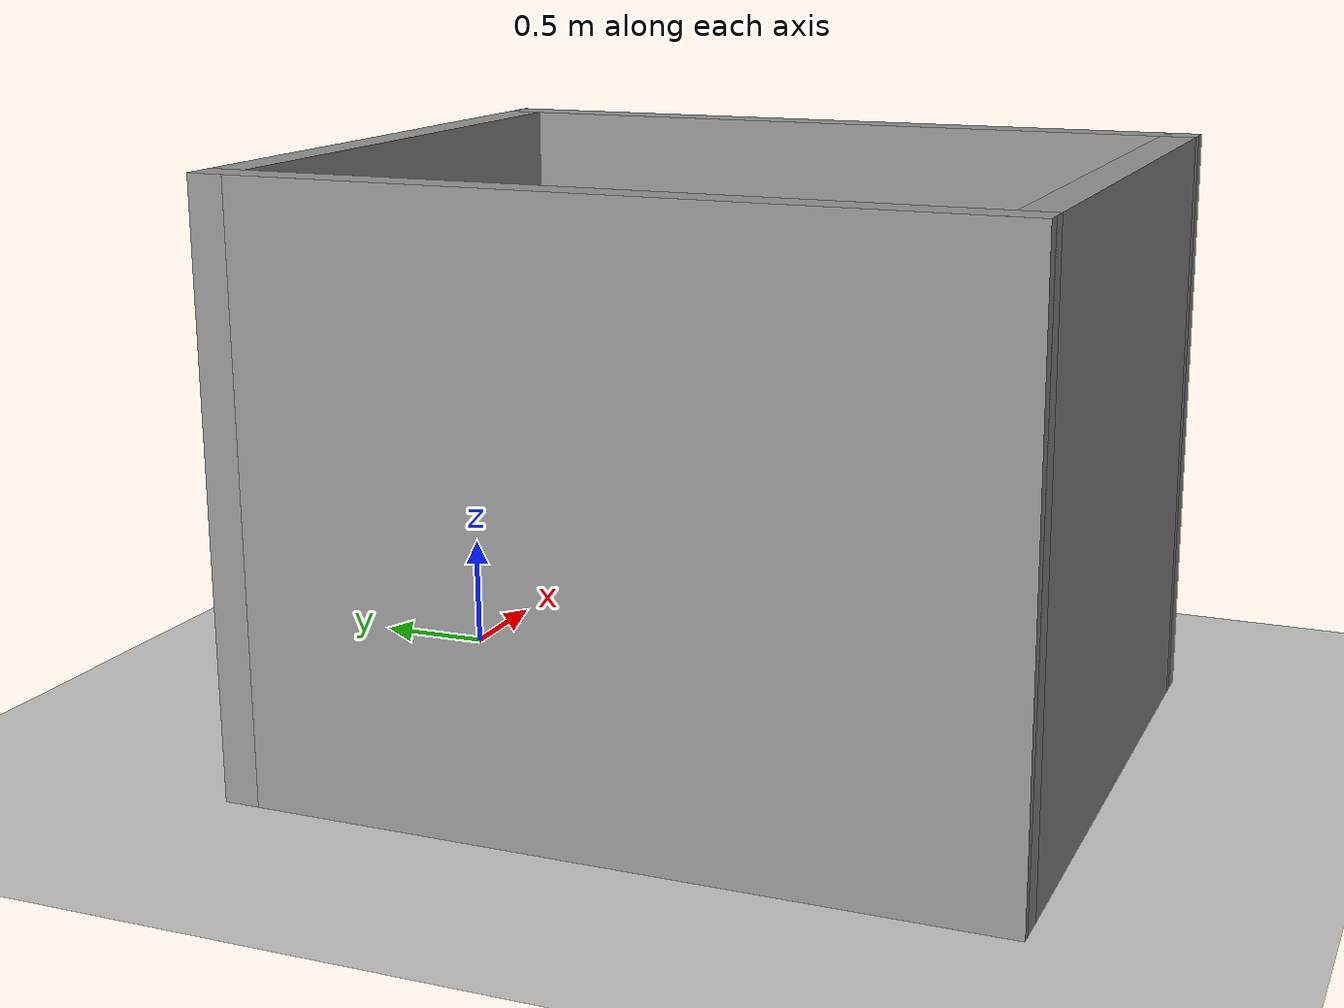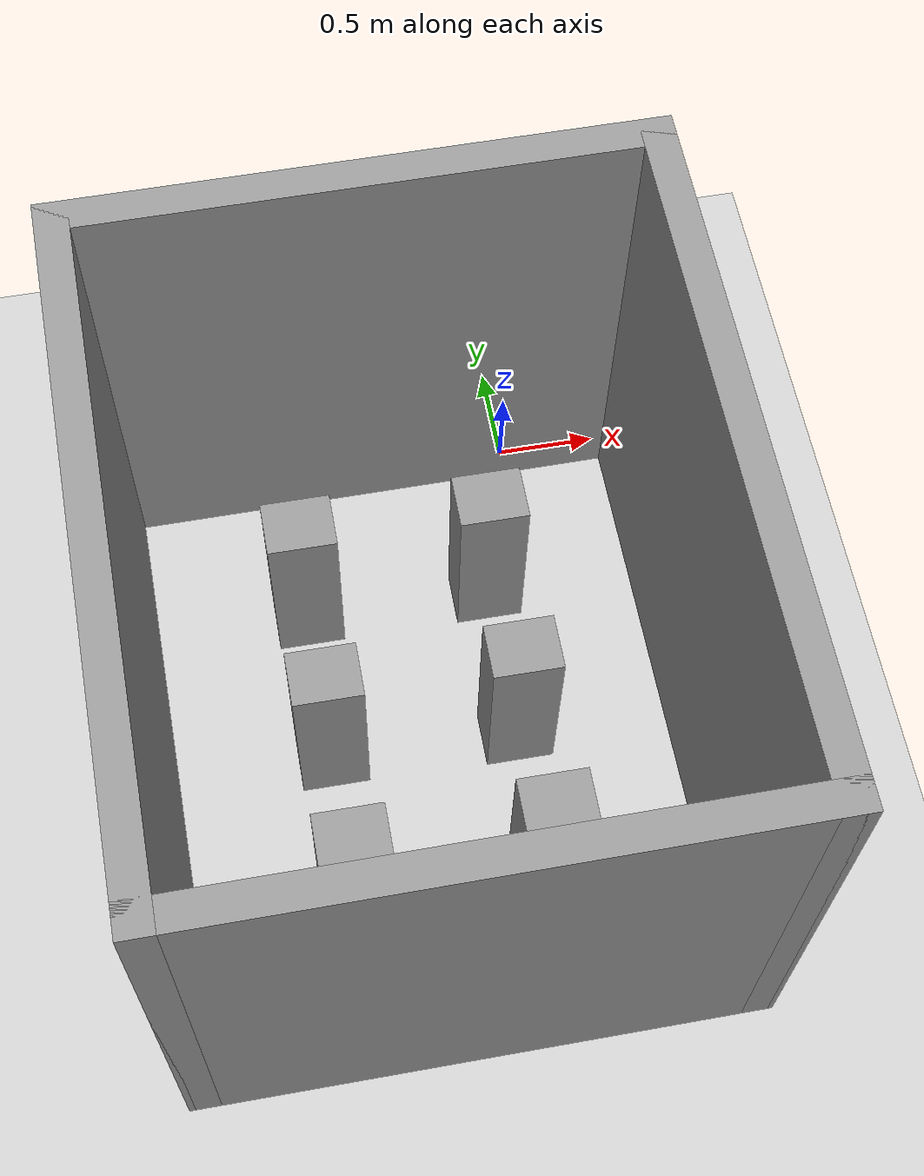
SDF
<sdf version="1.7">
 <world name="default">
  <light name="sun" type="directional">
   <pose>0 0 10 0 -0 0</pose>
   <diffuse>0.8 0.8 0.8 1</diffuse>
   <specular>0.2 0.2 0.2 1</specular>
   <attenuation>
    <range>1000</range>
    <constant>0.9</constant>
    <linear>0.01</linear>
    <quadratic>0.001</quadratic>
   </attenuation>
   <direction>-0.5 0.1 -0.9</direction>
   <spot><inner_angle>0</inner_angle><outer_angle>0</outer_angle><falloff>0</falloff></spot>
  </light>
  <model name="ground_plane">
   <static>1</static>
   <link name="link">
    <collision name="collision">
     <geometry><plane><normal>0 0 1</normal><size>100 100</size></plane></geometry>
     <surface><friction><ode><mu>100</mu><mu2>50</mu2></ode></friction></surface>
    </collision>
    <visual name="visual">
     <cast_shadows>0</cast_shadows>
     <geometry><plane><normal>0 0 1</normal><size>100 100</size></plane></geometry>
     <material>
      <script><uri>file://media/materials/scripts/gazebo.material</uri><name>Gazebo/Grey</name></script>
     </material>
    </visual>
   </link>
  </model>
  <gravity>0 0 -9.8</gravity>
  <magnetic_field>6e-06 2.3e-05 -4.2e-05</magnetic_field>
  <atmosphere type="adiabatic"/>
  <physics type="ode">
   <max_step_size>0.001</max_step_size>
   <real_time_factor>1</real_time_factor>
   <real_time_update_rate>1000</real_time_update_rate>
  </physics>
  <scene><ambient>0.4 0.4 0.4 1</ambient><background>0.7 0.7 0.7 1</background><shadows>1</shadows></scene>
  <audio><device>default</device></audio>
  <spherical_coordinates>
   <surface_model>EARTH_WGS84</surface_model>
   <latitude_deg>0</latitude_deg>
   <longitude_deg>0</longitude_deg>
   <elevation>0</elevation>
   <heading_deg>0</heading_deg>
  </spherical_coordinates>
  <model name="small_square">
   <pose>-0.71 -1.6 0 0 -0 0</pose>
   <link name="Wall_10">
    <collision name="Wall_10_Collision">
     <geometry><box><size>3.25 0.15 2.5</size></box></geometry>
     <pose>0 0 1.25 0 -0 0</pose>
    </collision>
    <visual name="Wall_10_Visual">
     <pose>0 0 1.25 0 -0 0</pose>
     <geometry><box><size>3.25 0.15 2.5</size></box></geometry>
     <material>
      <script><uri>file://media/materials/scripts/gazebo.material</uri><name>Gazebo/Grey</name></script>
      <ambient>1 1 1 1</ambient>
     </material>
     <meta><layer>0</layer></meta>
    </visual>
    <pose>-1.3 0 0 0 -0 -1.5708</pose>
   </link>
   <link name="Wall_6">
    <collision name="Wall_6_Collision">
     <geometry><box><size>2.75 0.15 2.5</size></box></geometry>
     <pose>0 0 1.25 0 -0 0</pose>
    </collision>
    <visual name="Wall_6_Visual">
     <pose>0 0 1.25 0 -0 0</pose>
     <geometry><box><size>2.75 0.15 2.5</size></box></geometry>
     <material>
      <script><uri>file://media/materials/scripts/gazebo.material</uri><name>Gazebo/Grey</name></script>
      <ambient>1 1 1 1</ambient>
     </material>
     <meta><layer>0</layer></meta>
    </visual>
    <pose>0 -1.55 0 0 -0 0</pose>
   </link>
   <link name="Wall_8">
    <collision name="Wall_8_Collision">
     <geometry><box><size>3.25 0.15 2.5</size></box></geometry>
     <pose>0 0 1.25 0 -0 0</pose>
    </collision>
    <visual name="Wall_8_Visual">
     <pose>0 0 1.25 0 -0 0</pose>
     <geometry><box><size>3.25 0.15 2.5</size></box></geometry>
     <material>
      <script><uri>file://media/materials/scripts/gazebo.material</uri><name>Gazebo/Grey</name></script>
      <ambient>1 1 1 1</ambient>
     </material>
     <meta><layer>0</layer></meta>
    </visual>
    <pose>1.3 0 0 0 -0 1.5708</pose>
   </link>
   <link name="Wall_9">
    <collision name="Wall_9_Collision">
     <geometry><box><size>2.75 0.15 2.5</size></box></geometry>
     <pose>0 0 1.25 0 -0 0</pose>
    </collision>
    <visual name="Wall_9_Visual">
     <pose>0 0 1.25 0 -0 0</pose>
     <geometry><box><size>2.75 0.15 2.5</size></box></geometry>
     <material>
      <script><uri>file://media/materials/scripts/gazebo.material</uri><name>Gazebo/Grey</name></script>
      <ambient>1 1 1 1</ambient>
     </material>
     <meta><layer>0</layer></meta>
    </visual>
    <pose>0 1.55 0 0 -0 3.14159</pose>
   </link>
   <static>1</static>
  </model>
  <model name="unit_box">
   <pose>-0.247137 -0.836457 0.499999 2e-06 3e-06 -0.005041</pose>
   <link name="link">
    <inertial>
     <mass>1</mass>
     <inertia>
      <ixx>0.166667</ixx>
      <ixy>0</ixy>
      <ixz>0</ixz>
      <iyy>0.166667</iyy>
      <iyz>0</iyz>
      <izz>0.166667</izz>
     </inertia>
    </inertial>
    <collision name="collision"><geometry><box><size>0.331753 0.268074 1</size></box></geometry></collision>
    <visual name="visual">
     <geometry><box><size>0.331753 0.268074 1</size></box></geometry>
     <material>
      <script><name>Gazebo/Grey</name><uri>file://media/materials/scripts/gazebo.material</uri></script>
     </material>
    </visual>
   </link>
  </model>
  <light name="user_point_light_0" type="point">
   <pose>-0.109008 3.57058 1 0 -0 0</pose>
   <diffuse>0.5 0.5 0.5 1</diffuse>
   <specular>0.1 0.1 0.1 1</specular>
   <attenuation>
    <range>20</range>
    <constant>0.5</constant>
    <linear>0.01</linear>
    <quadratic>0.001</quadratic>
   </attenuation>
   <cast_shadows>0</cast_shadows>
   <direction>0 0 -1</direction>
   <spot><inner_angle>0</inner_angle><outer_angle>0</outer_angle><falloff>0</falloff></spot>
  </light>
  <model name="unit_box_clone">
   <pose>-1.16626 -0.826514 0.499999 -1e-06 -3e-06 -0.005557</pose>
   <link name="link">
    <inertial>
     <mass>1</mass>
     <inertia>
      <ixx>0.166667</ixx>
      <ixy>0</ixy>
      <ixz>0</ixz>
      <iyy>0.166667</iyy>
      <iyz>0</iyz>
      <izz>0.166667</izz>
     </inertia>
    </inertial>
    <collision name="collision"><geometry><box><size>0.331753 0.268074 1</size></box></geometry></collision>
    <visual name="visual">
     <geometry><box><size>0.331753 0.268074 1</size></box></geometry>
     <material>
      <script><name>Gazebo/Grey</name><uri>file://media/materials/scripts/gazebo.material</uri></script>
     </material>
    </visual>
   </link>
  </model>
  <model name="unit_box_clone_0">
   <pose>-0.248445 -1.64253 0.499999 -2e-06 -2e-06 -0.005357</pose>
   <link name="link">
    <inertial>
     <mass>1</mass>
     <inertia>
      <ixx>0.166667</ixx>
      <ixy>0</ixy>
      <ixz>0</ixz>
      <iyy>0.166667</iyy>
      <iyz>0</iyz>
      <izz>0.166667</izz>
     </inertia>
    </inertial>
    <collision name="collision"><geometry><box><size>0.331753 0.268074 1</size></box></geometry></collision>
    <visual name="visual">
     <geometry><box><size>0.331753 0.268074 1</size></box></geometry>
     <material>
      <script><name>Gazebo/Grey</name><uri>file://media/materials/scripts/gazebo.material</uri></script>
     </material>
    </visual>
   </link>
  </model>
  <model name="unit_box_clone_1">
   <pose>-0.248433 -2.41092 0.499999 -3e-06 2e-06 -0.005613</pose>
   <link name="link">
    <inertial>
     <mass>1</mass>
     <inertia>
      <ixx>0.166667</ixx>
      <ixy>0</ixy>
      <ixz>0</ixz>
      <iyy>0.166667</iyy>
      <iyz>0</iyz>
      <izz>0.166667</izz>
     </inertia>
    </inertial>
    <collision name="collision"><geometry><box><size>0.331753 0.268074 1</size></box></geometry></collision>
    <visual name="visual">
     <geometry><box><size>0.331753 0.268074 1</size></box></geometry>
     <material>
      <script><name>Gazebo/Grey</name><uri>file://media/materials/scripts/gazebo.material</uri></script>
     </material>
    </visual>
   </link>
  </model>
  <model name="unit_box_clone_2">
   <pose>-1.16731 -1.62046 0.499999 2e-06 2e-06 -0.005356</pose>
   <link name="link">
    <inertial>
     <mass>1</mass>
     <inertia>
      <ixx>0.166667</ixx>
      <ixy>0</ixy>
      <ixz>0</ixz>
      <iyy>0.166667</iyy>
      <iyz>0</iyz>
      <izz>0.166667</izz>
     </inertia>
    </inertial>
    <collision name="collision"><geometry><box><size>0.331753 0.268074 1</size></box></geometry></collision>
    <visual name="visual">
     <geometry><box><size>0.331753 0.268074 1</size></box></geometry>
     <material>
      <script><name>Gazebo/Grey</name><uri>file://media/materials/scripts/gazebo.material</uri></script>
     </material>
    </visual>
   </link>
  </model>
  <model name="unit_box_clone_3">
   <pose>-1.16731 -2.41408 0.5 0 -2e-06 -0.005135</pose>
   <link name="link">
    <inertial>
     <mass>1</mass>
     <inertia>
      <ixx>0.166667</ixx>
      <ixy>0</ixy>
      <ixz>0</ixz>
      <iyy>0.166667</iyy>
      <iyz>0</iyz>
      <izz>0.166667</izz>
     </inertia>
    </inertial>
    <collision name="collision"><geometry><box><size>0.331753 0.268074 1</size></box></geometry></collision>
    <visual name="visual">
     <geometry><box><size>0.331753 0.268074 1</size></box></geometry>
     <material>
      <script><name>Gazebo/Grey</name><uri>file://media/materials/scripts/gazebo.material</uri></script>
     </material>
    </visual>
   </link>
  </model>
 </world>
</sdf>
